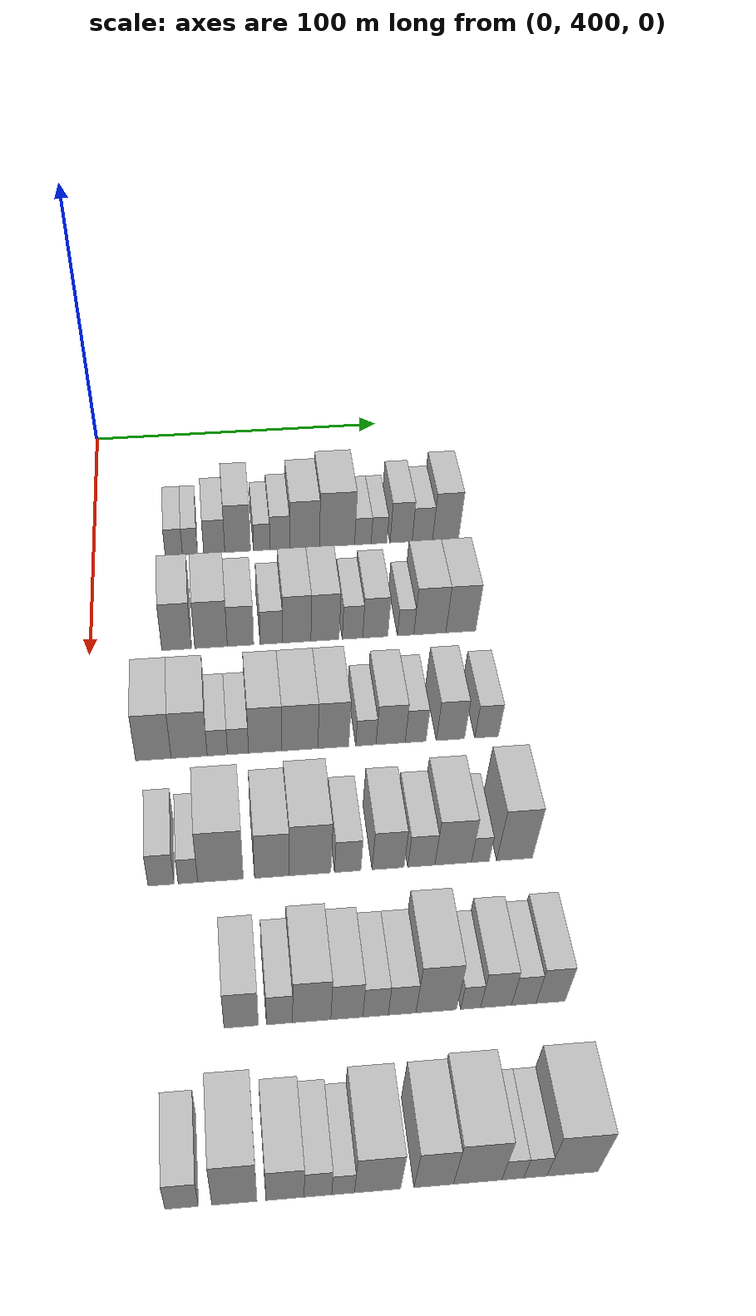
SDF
<sdf version="1.6">
 <world name="default">
  <model name="building_109">
   <static>1</static>
   <pose>50.0000 426.2319 0 0.000000 0.000000 0.000000</pose>
   <link name="link">
    <pose>0 0 6.00 0 0 0</pose>
    <collision name="collision"><geometry><box><size>20.0000 5.6300 12.0000</size></box></geometry></collision>
    <visual name="visual">
     <cast_shadows>0</cast_shadows>
     <geometry><box><size>20.0000 5.6300 12.0000</size></box></geometry>
     <material>
      <script>
       <uri>model://HANNAS_wall/materials/scripts</uri>
       <uri>model://HANNAS_wall/materials/textures</uri>
       <name>vrc/HANNAS_wall</name>
      </script>
     </material>
    </visual>
   </link>
  </model>
  <model name="building_110">
   <static>1</static>
   <pose>50.0000 431.5166 0 0.000000 0.000000 0.000000</pose>
   <link name="link">
    <pose>0 0 6.00 0 0 0</pose>
    <collision name="collision"><geometry><box><size>20.0000 4.9394 12.0000</size></box></geometry></collision>
    <visual name="visual">
     <cast_shadows>0</cast_shadows>
     <geometry><box><size>20.0000 4.9394 12.0000</size></box></geometry>
     <material>
      <script>
       <uri>model://HANNAS_wall/materials/scripts</uri>
       <uri>model://HANNAS_wall/materials/textures</uri>
       <name>vrc/HANNAS_wall</name>
      </script>
     </material>
    </visual>
   </link>
  </model>
  <model name="building_111">
   <static>1</static>
   <pose>50.0000 439.4368 0 0.000000 0.000000 0.000000</pose>
   <link name="link">
    <pose>0 0 7.50 0 0 0</pose>
    <collision name="collision"><geometry><box><size>20.0000 6.9009 15.0000</size></box></geometry></collision>
    <visual name="visual">
     <cast_shadows>0</cast_shadows>
     <geometry><box><size>20.0000 6.9009 15.0000</size></box></geometry>
     <material>
      <script>
       <uri>model://HANNAS_wall/materials/scripts</uri>
       <uri>model://HANNAS_wall/materials/textures</uri>
       <name>vrc/HANNAS_wall</name>
      </script>
     </material>
    </visual>
   </link>
  </model>
  <model name="building_112">
   <static>1</static>
   <pose>50.0000 447.0888 0 0.000000 0.000000 0.000000</pose>
   <link name="link">
    <pose>0 0 10.50 0 0 0</pose>
    <collision name="collision"><geometry><box><size>20.0000 8.4031 21.0000</size></box></geometry></collision>
    <visual name="visual">
     <cast_shadows>0</cast_shadows>
     <geometry><box><size>20.0000 8.4031 21.0000</size></box></geometry>
     <material>
      <script>
       <uri>model://HANNAS_wall/materials/scripts</uri>
       <uri>model://HANNAS_wall/materials/textures</uri>
       <name>vrc/HANNAS_wall</name>
      </script>
     </material>
    </visual>
   </link>
  </model>
  <model name="building_113">
   <static>1</static>
   <pose>50.0000 454.9744 0 0.000000 0.000000 0.000000</pose>
   <link name="link">
    <pose>0 0 6.00 0 0 0</pose>
    <collision name="collision"><geometry><box><size>20.0000 5.3681 12.0000</size></box></geometry></collision>
    <visual name="visual">
     <cast_shadows>0</cast_shadows>
     <geometry><box><size>20.0000 5.3681 12.0000</size></box></geometry>
     <material>
      <script>
       <uri>model://HANNAS_wall/materials/scripts</uri>
       <uri>model://HANNAS_wall/materials/textures</uri>
       <name>vrc/HANNAS_wall</name>
      </script>
     </material>
    </visual>
   </link>
  </model>
  <model name="building_114">
   <static>1</static>
   <pose>50.0000 460.9009 0 0.000000 0.000000 0.000000</pose>
   <link name="link">
    <pose>0 0 7.50 0 0 0</pose>
    <collision name="collision"><geometry><box><size>20.0000 6.4849 15.0000</size></box></geometry></collision>
    <visual name="visual">
     <cast_shadows>0</cast_shadows>
     <geometry><box><size>20.0000 6.4849 15.0000</size></box></geometry>
     <material>
      <script>
       <uri>model://HANNAS_wall/materials/scripts</uri>
       <uri>model://HANNAS_wall/materials/textures</uri>
       <name>vrc/HANNAS_wall</name>
      </script>
     </material>
    </visual>
   </link>
  </model>
  <model name="building_115">
   <static>1</static>
   <pose>50.0000 469.0437 0 0.000000 0.000000 0.000000</pose>
   <link name="link">
    <pose>0 0 10.50 0 0 0</pose>
    <collision name="collision"><geometry><box><size>20.0000 9.8007 21.0000</size></box></geometry></collision>
    <visual name="visual">
     <cast_shadows>0</cast_shadows>
     <geometry><box><size>20.0000 9.8007 21.0000</size></box></geometry>
     <material>
      <script>
       <uri>model://HANNAS_wall/materials/scripts</uri>
       <uri>model://HANNAS_wall/materials/textures</uri>
       <name>vrc/HANNAS_wall</name>
      </script>
     </material>
    </visual>
   </link>
  </model>
  <model name="building_116">
   <static>1</static>
   <pose>50.0000 479.7732 0 0.000000 0.000000 0.000000</pose>
   <link name="link">
    <pose>0 0 12.00 0 0 0</pose>
    <collision name="collision"><geometry><box><size>20.0000 11.6583 24.0000</size></box></geometry></collision>
    <visual name="visual">
     <cast_shadows>0</cast_shadows>
     <geometry><box><size>20.0000 11.6583 24.0000</size></box></geometry>
     <material>
      <script>
       <uri>model://HANNAS_wall/materials/scripts</uri>
       <uri>model://HANNAS_wall/materials/textures</uri>
       <name>vrc/HANNAS_wall</name>
      </script>
     </material>
    </visual>
   </link>
  </model>
  <model name="building_117">
   <static>1</static>
   <pose>50.0000 488.3434 0 0.000000 0.000000 0.000000</pose>
   <link name="link">
    <pose>0 0 6.00 0 0 0</pose>
    <collision name="collision"><geometry><box><size>20.0000 5.4820 12.0000</size></box></geometry></collision>
    <visual name="visual">
     <cast_shadows>0</cast_shadows>
     <geometry><box><size>20.0000 5.4820 12.0000</size></box></geometry>
     <material>
      <script>
       <uri>model://HANNAS_wall/materials/scripts</uri>
       <uri>model://HANNAS_wall/materials/textures</uri>
       <name>vrc/HANNAS_wall</name>
      </script>
     </material>
    </visual>
   </link>
  </model>
  <model name="building_118">
   <static>1</static>
   <pose>50.0000 493.7127 0 0.000000 0.000000 0.000000</pose>
   <link name="link">
    <pose>0 0 6.00 0 0 0</pose>
    <collision name="collision"><geometry><box><size>20.0000 5.2568 12.0000</size></box></geometry></collision>
    <visual name="visual">
     <cast_shadows>0</cast_shadows>
     <geometry><box><size>20.0000 5.2568 12.0000</size></box></geometry>
     <material>
      <script>
       <uri>model://HANNAS_wall/materials/scripts</uri>
       <uri>model://HANNAS_wall/materials/textures</uri>
       <name>vrc/HANNAS_wall</name>
      </script>
     </material>
    </visual>
   </link>
  </model>
  <model name="building_119">
   <static>1</static>
   <pose>50.0000 501.0088 0 0.000000 0.000000 0.000000</pose>
   <link name="link">
    <pose>0 0 9.00 0 0 0</pose>
    <collision name="collision"><geometry><box><size>20.0000 7.3353 18.0000</size></box></geometry></collision>
    <visual name="visual">
     <cast_shadows>0</cast_shadows>
     <geometry><box><size>20.0000 7.3353 18.0000</size></box></geometry>
     <material>
      <script>
       <uri>model://HANNAS_wall/materials/scripts</uri>
       <uri>model://HANNAS_wall/materials/textures</uri>
       <name>vrc/HANNAS_wall</name>
      </script>
     </material>
    </visual>
   </link>
  </model>
  <model name="building_120">
   <static>1</static>
   <pose>50.0000 508.0726 0 0.000000 0.000000 0.000000</pose>
   <link name="link">
    <pose>0 0 7.50 0 0 0</pose>
    <collision name="collision"><geometry><box><size>20.0000 6.7923 15.0000</size></box></geometry></collision>
    <visual name="visual">
     <cast_shadows>0</cast_shadows>
     <geometry><box><size>20.0000 6.7923 15.0000</size></box></geometry>
     <material>
      <script>
       <uri>model://HANNAS_wall/materials/scripts</uri>
       <uri>model://HANNAS_wall/materials/textures</uri>
       <name>vrc/HANNAS_wall</name>
      </script>
     </material>
    </visual>
   </link>
  </model>
  <model name="building_121">
   <static>1</static>
   <pose>50.0000 515.8323 0 0.000000 0.000000 0.000000</pose>
   <link name="link">
    <pose>0 0 10.50 0 0 0</pose>
    <collision name="collision"><geometry><box><size>20.0000 8.7270 21.0000</size></box></geometry></collision>
    <visual name="visual">
     <cast_shadows>0</cast_shadows>
     <geometry><box><size>20.0000 8.7270 21.0000</size></box></geometry>
     <material>
      <script>
       <uri>model://HANNAS_wall/materials/scripts</uri>
       <uri>model://HANNAS_wall/materials/textures</uri>
       <name>vrc/HANNAS_wall</name>
      </script>
     </material>
    </visual>
   </link>
  </model>
  <model name="building_245">
   <static>1</static>
   <pose>90.0000 426.3138 0 0.000000 0.000000 0.000000</pose>
   <link name="link">
    <pose>0 0 10.50 0 0 0</pose>
    <collision name="collision"><geometry><box><size>20.0000 9.0513 21.0000</size></box></geometry></collision>
    <visual name="visual">
     <cast_shadows>0</cast_shadows>
     <geometry><box><size>20.0000 9.0513 21.0000</size></box></geometry>
     <material>
      <script>
       <uri>model://HANNAS_wall/materials/scripts</uri>
       <uri>model://HANNAS_wall/materials/textures</uri>
       <name>vrc/HANNAS_wall</name>
      </script>
     </material>
    </visual>
   </link>
  </model>
  <model name="building_246">
   <static>1</static>
   <pose>90.0000 436.8096 0 0.000000 0.000000 0.000000</pose>
   <link name="link">
    <pose>0 0 10.50 0 0 0</pose>
    <collision name="collision"><geometry><box><size>20.0000 9.9404 21.0000</size></box></geometry></collision>
    <visual name="visual">
     <cast_shadows>0</cast_shadows>
     <geometry><box><size>20.0000 9.9404 21.0000</size></box></geometry>
     <material>
      <script>
       <uri>model://HANNAS_wall/materials/scripts</uri>
       <uri>model://HANNAS_wall/materials/textures</uri>
       <name>vrc/HANNAS_wall</name>
      </script>
     </material>
    </visual>
   </link>
  </model>
  <model name="building_247">
   <static>1</static>
   <pose>90.0000 445.8253 0 0.000000 0.000000 0.000000</pose>
   <link name="link">
    <pose>0 0 9.00 0 0 0</pose>
    <collision name="collision"><geometry><box><size>20.0000 8.0908 18.0000</size></box></geometry></collision>
    <visual name="visual">
     <cast_shadows>0</cast_shadows>
     <geometry><box><size>20.0000 8.0908 18.0000</size></box></geometry>
     <material>
      <script>
       <uri>model://HANNAS_wall/materials/scripts</uri>
       <uri>model://HANNAS_wall/materials/textures</uri>
       <name>vrc/HANNAS_wall</name>
      </script>
     </material>
    </visual>
   </link>
  </model>
  <model name="building_248">
   <static>1</static>
   <pose>90.0000 455.2930 0 0.000000 0.000000 0.000000</pose>
   <link name="link">
    <pose>0 0 7.50 0 0 0</pose>
    <collision name="collision"><geometry><box><size>20.0000 6.8446 15.0000</size></box></geometry></collision>
    <visual name="visual">
     <cast_shadows>0</cast_shadows>
     <geometry><box><size>20.0000 6.8446 15.0000</size></box></geometry>
     <material>
      <script>
       <uri>model://HANNAS_wall/materials/scripts</uri>
       <uri>model://HANNAS_wall/materials/textures</uri>
       <name>vrc/HANNAS_wall</name>
      </script>
     </material>
    </visual>
   </link>
  </model>
  <model name="building_249">
   <static>1</static>
   <pose>90.0000 463.0840 0 0.000000 0.000000 0.000000</pose>
   <link name="link">
    <pose>0 0 10.50 0 0 0</pose>
    <collision name="collision"><geometry><box><size>20.0000 8.7374 21.0000</size></box></geometry></collision>
    <visual name="visual">
     <cast_shadows>0</cast_shadows>
     <geometry><box><size>20.0000 8.7374 21.0000</size></box></geometry>
     <material>
      <script>
       <uri>model://HANNAS_wall/materials/scripts</uri>
       <uri>model://HANNAS_wall/materials/textures</uri>
       <name>vrc/HANNAS_wall</name>
      </script>
     </material>
    </visual>
   </link>
  </model>
  <model name="building_250">
   <static>1</static>
   <pose>90.0000 471.8008 0 0.000000 0.000000 0.000000</pose>
   <link name="link">
    <pose>0 0 10.50 0 0 0</pose>
    <collision name="collision"><geometry><box><size>20.0000 8.6964 21.0000</size></box></geometry></collision>
    <visual name="visual">
     <cast_shadows>0</cast_shadows>
     <geometry><box><size>20.0000 8.6964 21.0000</size></box></geometry>
     <material>
      <script>
       <uri>model://HANNAS_wall/materials/scripts</uri>
       <uri>model://HANNAS_wall/materials/textures</uri>
       <name>vrc/HANNAS_wall</name>
      </script>
     </material>
    </visual>
   </link>
  </model>
  <model name="building_251">
   <static>1</static>
   <pose>90.0000 480.3038 0 0.000000 0.000000 0.000000</pose>
   <link name="link">
    <pose>0 0 7.50 0 0 0</pose>
    <collision name="collision"><geometry><box><size>20.0000 6.3096 15.0000</size></box></geometry></collision>
    <visual name="visual">
     <cast_shadows>0</cast_shadows>
     <geometry><box><size>20.0000 6.3096 15.0000</size></box></geometry>
     <material>
      <script>
       <uri>model://HANNAS_wall/materials/scripts</uri>
       <uri>model://HANNAS_wall/materials/textures</uri>
       <name>vrc/HANNAS_wall</name>
      </script>
     </material>
    </visual>
   </link>
  </model>
  <model name="building_252">
   <static>1</static>
   <pose>90.0000 487.3551 0 0.000000 0.000000 0.000000</pose>
   <link name="link">
    <pose>0 0 9.00 0 0 0</pose>
    <collision name="collision"><geometry><box><size>20.0000 7.7930 18.0000</size></box></geometry></collision>
    <visual name="visual">
     <cast_shadows>0</cast_shadows>
     <geometry><box><size>20.0000 7.7930 18.0000</size></box></geometry>
     <material>
      <script>
       <uri>model://HANNAS_wall/materials/scripts</uri>
       <uri>model://HANNAS_wall/materials/textures</uri>
       <name>vrc/HANNAS_wall</name>
      </script>
     </material>
    </visual>
   </link>
  </model>
  <model name="building_253">
   <static>1</static>
   <pose>90.0000 496.7906 0 0.000000 0.000000 0.000000</pose>
   <link name="link">
    <pose>0 0 6.00 0 0 0</pose>
    <collision name="collision"><geometry><box><size>20.0000 5.0781 12.0000</size></box></geometry></collision>
    <visual name="visual">
     <cast_shadows>0</cast_shadows>
     <geometry><box><size>20.0000 5.0781 12.0000</size></box></geometry>
     <material>
      <script>
       <uri>model://HANNAS_wall/materials/scripts</uri>
       <uri>model://HANNAS_wall/materials/textures</uri>
       <name>vrc/HANNAS_wall</name>
      </script>
     </material>
    </visual>
   </link>
  </model>
  <model name="building_254">
   <static>1</static>
   <pose>90.0000 504.3240 0 0.000000 0.000000 0.000000</pose>
   <link name="link">
    <pose>0 0 10.50 0 0 0</pose>
    <collision name="collision"><geometry><box><size>20.0000 9.9887 21.0000</size></box></geometry></collision>
    <visual name="visual">
     <cast_shadows>0</cast_shadows>
     <geometry><box><size>20.0000 9.9887 21.0000</size></box></geometry>
     <material>
      <script>
       <uri>model://HANNAS_wall/materials/scripts</uri>
       <uri>model://HANNAS_wall/materials/textures</uri>
       <name>vrc/HANNAS_wall</name>
      </script>
     </material>
    </visual>
   </link>
  </model>
  <model name="building_255">
   <static>1</static>
   <pose>90.0000 513.9896 0 0.000000 0.000000 0.000000</pose>
   <link name="link">
    <pose>0 0 10.50 0 0 0</pose>
    <collision name="collision"><geometry><box><size>20.0000 9.3424 21.0000</size></box></geometry></collision>
    <visual name="visual">
     <cast_shadows>0</cast_shadows>
     <geometry><box><size>20.0000 9.3424 21.0000</size></box></geometry>
     <material>
      <script>
       <uri>model://HANNAS_wall/materials/scripts</uri>
       <uri>model://HANNAS_wall/materials/textures</uri>
       <name>vrc/HANNAS_wall</name>
      </script>
     </material>
    </visual>
   </link>
  </model>
  <model name="building_382">
   <static>1</static>
   <pose>130.0000 418.8878 0 0.000000 0.000000 0.000000</pose>
   <link name="link">
    <pose>0 0 10.50 0 0 0</pose>
    <collision name="collision"><geometry><box><size>20.0000 10.0614 21.0000</size></box></geometry></collision>
    <visual name="visual">
     <cast_shadows>0</cast_shadows>
     <geometry><box><size>20.0000 10.0614 21.0000</size></box></geometry>
     <material>
      <script>
       <uri>model://HANNAS_wall/materials/scripts</uri>
       <uri>model://HANNAS_wall/materials/textures</uri>
       <name>vrc/HANNAS_wall</name>
      </script>
     </material>
    </visual>
   </link>
  </model>
  <model name="building_383">
   <static>1</static>
   <pose>130.0000 429.0258 0 0.000000 0.000000 0.000000</pose>
   <link name="link">
    <pose>0 0 10.50 0 0 0</pose>
    <collision name="collision"><geometry><box><size>20.0000 10.2147 21.0000</size></box></geometry></collision>
    <visual name="visual">
     <cast_shadows>0</cast_shadows>
     <geometry><box><size>20.0000 10.2147 21.0000</size></box></geometry>
     <material>
      <script>
       <uri>model://HANNAS_wall/materials/scripts</uri>
       <uri>model://HANNAS_wall/materials/textures</uri>
       <name>vrc/HANNAS_wall</name>
      </script>
     </material>
    </visual>
   </link>
  </model>
  <model name="building_384">
   <static>1</static>
   <pose>130.0000 437.0307 0 0.000000 0.000000 0.000000</pose>
   <link name="link">
    <pose>0 0 6.00 0 0 0</pose>
    <collision name="collision"><geometry><box><size>20.0000 5.7950 12.0000</size></box></geometry></collision>
    <visual name="visual">
     <cast_shadows>0</cast_shadows>
     <geometry><box><size>20.0000 5.7950 12.0000</size></box></geometry>
     <material>
      <script>
       <uri>model://HANNAS_wall/materials/scripts</uri>
       <uri>model://HANNAS_wall/materials/textures</uri>
       <name>vrc/HANNAS_wall</name>
      </script>
     </material>
    </visual>
   </link>
  </model>
  <model name="building_385">
   <static>1</static>
   <pose>130.0000 442.9160 0 0.000000 0.000000 0.000000</pose>
   <link name="link">
    <pose>0 0 6.00 0 0 0</pose>
    <collision name="collision"><geometry><box><size>20.0000 5.9756 12.0000</size></box></geometry></collision>
    <visual name="visual">
     <cast_shadows>0</cast_shadows>
     <geometry><box><size>20.0000 5.9756 12.0000</size></box></geometry>
     <material>
      <script>
       <uri>model://HANNAS_wall/materials/scripts</uri>
       <uri>model://HANNAS_wall/materials/textures</uri>
       <name>vrc/HANNAS_wall</name>
      </script>
     </material>
    </visual>
   </link>
  </model>
  <model name="building_386">
   <static>1</static>
   <pose>130.0000 450.6534 0 0.000000 0.000000 0.000000</pose>
   <link name="link">
    <pose>0 0 10.50 0 0 0</pose>
    <collision name="collision"><geometry><box><size>20.0000 9.4994 21.0000</size></box></geometry></collision>
    <visual name="visual">
     <cast_shadows>0</cast_shadows>
     <geometry><box><size>20.0000 9.4994 21.0000</size></box></geometry>
     <material>
      <script>
       <uri>model://HANNAS_wall/materials/scripts</uri>
       <uri>model://HANNAS_wall/materials/textures</uri>
       <name>vrc/HANNAS_wall</name>
      </script>
     </material>
    </visual>
   </link>
  </model>
  <model name="building_387">
   <static>1</static>
   <pose>130.0000 460.5909 0 0.000000 0.000000 0.000000</pose>
   <link name="link">
    <pose>0 0 10.50 0 0 0</pose>
    <collision name="collision"><geometry><box><size>20.0000 10.3756 21.0000</size></box></geometry></collision>
    <visual name="visual">
     <cast_shadows>0</cast_shadows>
     <geometry><box><size>20.0000 10.3756 21.0000</size></box></geometry>
     <material>
      <script>
       <uri>model://HANNAS_wall/materials/scripts</uri>
       <uri>model://HANNAS_wall/materials/textures</uri>
       <name>vrc/HANNAS_wall</name>
      </script>
     </material>
    </visual>
   </link>
  </model>
  <model name="building_388">
   <static>1</static>
   <pose>130.0000 470.2148 0 0.000000 0.000000 0.000000</pose>
   <link name="link">
    <pose>0 0 10.50 0 0 0</pose>
    <collision name="collision"><geometry><box><size>20.0000 8.8722 21.0000</size></box></geometry></collision>
    <visual name="visual">
     <cast_shadows>0</cast_shadows>
     <geometry><box><size>20.0000 8.8722 21.0000</size></box></geometry>
     <material>
      <script>
       <uri>model://HANNAS_wall/materials/scripts</uri>
       <uri>model://HANNAS_wall/materials/textures</uri>
       <name>vrc/HANNAS_wall</name>
      </script>
     </material>
    </visual>
   </link>
  </model>
  <model name="building_389">
   <static>1</static>
   <pose>130.0000 479.5742 0 0.000000 0.000000 0.000000</pose>
   <link name="link">
    <pose>0 0 6.00 0 0 0</pose>
    <collision name="collision"><geometry><box><size>20.0000 5.8466 12.0000</size></box></geometry></collision>
    <visual name="visual">
     <cast_shadows>0</cast_shadows>
     <geometry><box><size>20.0000 5.8466 12.0000</size></box></geometry>
     <material>
      <script>
       <uri>model://HANNAS_wall/materials/scripts</uri>
       <uri>model://HANNAS_wall/materials/textures</uri>
       <name>vrc/HANNAS_wall</name>
      </script>
     </material>
    </visual>
   </link>
  </model>
  <model name="building_390">
   <static>1</static>
   <pose>130.0000 486.7012 0 0.000000 0.000000 0.000000</pose>
   <link name="link">
    <pose>0 0 9.00 0 0 0</pose>
    <collision name="collision"><geometry><box><size>20.0000 8.4074 18.0000</size></box></geometry></collision>
    <visual name="visual">
     <cast_shadows>0</cast_shadows>
     <geometry><box><size>20.0000 8.4074 18.0000</size></box></geometry>
     <material>
      <script>
       <uri>model://HANNAS_wall/materials/scripts</uri>
       <uri>model://HANNAS_wall/materials/textures</uri>
       <name>vrc/HANNAS_wall</name>
      </script>
     </material>
    </visual>
   </link>
  </model>
  <model name="building_391">
   <static>1</static>
   <pose>130.0000 493.9213 0 0.000000 0.000000 0.000000</pose>
   <link name="link">
    <pose>0 0 7.50 0 0 0</pose>
    <collision name="collision"><geometry><box><size>20.0000 6.0328 15.0000</size></box></geometry></collision>
    <visual name="visual">
     <cast_shadows>0</cast_shadows>
     <geometry><box><size>20.0000 6.0328 15.0000</size></box></geometry>
     <material>
      <script>
       <uri>model://HANNAS_wall/materials/scripts</uri>
       <uri>model://HANNAS_wall/materials/textures</uri>
       <name>vrc/HANNAS_wall</name>
      </script>
     </material>
    </visual>
   </link>
  </model>
  <model name="building_392">
   <static>1</static>
   <pose>130.0000 504.0261 0 0.000000 0.000000 0.000000</pose>
   <link name="link">
    <pose>0 0 9.00 0 0 0</pose>
    <collision name="collision"><geometry><box><size>20.0000 8.1768 18.0000</size></box></geometry></collision>
    <visual name="visual">
     <cast_shadows>0</cast_shadows>
     <geometry><box><size>20.0000 8.1768 18.0000</size></box></geometry>
     <material>
      <script>
       <uri>model://HANNAS_wall/materials/scripts</uri>
       <uri>model://HANNAS_wall/materials/textures</uri>
       <name>vrc/HANNAS_wall</name>
      </script>
     </material>
    </visual>
   </link>
  </model>
  <model name="building_393">
   <static>1</static>
   <pose>130.0000 514.5579 0 0.000000 0.000000 0.000000</pose>
   <link name="link">
    <pose>0 0 7.50 0 0 0</pose>
    <collision name="collision"><geometry><box><size>20.0000 6.8868 15.0000</size></box></geometry></collision>
    <visual name="visual">
     <cast_shadows>0</cast_shadows>
     <geometry><box><size>20.0000 6.8868 15.0000</size></box></geometry>
     <material>
      <script>
       <uri>model://HANNAS_wall/materials/scripts</uri>
       <uri>model://HANNAS_wall/materials/textures</uri>
       <name>vrc/HANNAS_wall</name>
      </script>
     </material>
    </visual>
   </link>
  </model>
  <model name="building_518">
   <static>1</static>
   <pose>170.0000 420.5794 0 0.000000 0.000000 0.000000</pose>
   <link name="link">
    <pose>0 0 7.50 0 0 0</pose>
    <collision name="collision"><geometry><box><size>20.0000 6.8968 15.0000</size></box></geometry></collision>
    <visual name="visual">
     <cast_shadows>0</cast_shadows>
     <geometry><box><size>20.0000 6.8968 15.0000</size></box></geometry>
     <material>
      <script>
       <uri>model://HANNAS_wall/materials/scripts</uri>
       <uri>model://HANNAS_wall/materials/textures</uri>
       <name>vrc/HANNAS_wall</name>
      </script>
     </material>
    </visual>
   </link>
  </model>
  <model name="building_519">
   <static>1</static>
   <pose>170.0000 427.5992 0 0.000000 0.000000 0.000000</pose>
   <link name="link">
    <pose>0 0 6.00 0 0 0</pose>
    <collision name="collision"><geometry><box><size>20.0000 5.1430 12.0000</size></box></geometry></collision>
    <visual name="visual">
     <cast_shadows>0</cast_shadows>
     <geometry><box><size>20.0000 5.1430 12.0000</size></box></geometry>
     <material>
      <script>
       <uri>model://HANNAS_wall/materials/scripts</uri>
       <uri>model://HANNAS_wall/materials/textures</uri>
       <name>vrc/HANNAS_wall</name>
      </script>
     </material>
    </visual>
   </link>
  </model>
  <model name="building_520">
   <static>1</static>
   <pose>170.0000 436.1576 0 0.000000 0.000000 0.000000</pose>
   <link name="link">
    <pose>0 0 12.00 0 0 0</pose>
    <collision name="collision"><geometry><box><size>20.0000 11.9738 24.0000</size></box></geometry></collision>
    <visual name="visual">
     <cast_shadows>0</cast_shadows>
     <geometry><box><size>20.0000 11.9738 24.0000</size></box></geometry>
     <material>
      <script>
       <uri>model://HANNAS_wall/materials/scripts</uri>
       <uri>model://HANNAS_wall/materials/textures</uri>
       <name>vrc/HANNAS_wall</name>
      </script>
     </material>
    </visual>
   </link>
  </model>
  <model name="building_521">
   <static>1</static>
   <pose>170.0000 449.7283 0 0.000000 0.000000 0.000000</pose>
   <link name="link">
    <pose>0 0 10.50 0 0 0</pose>
    <collision name="collision"><geometry><box><size>20.0000 9.1676 21.0000</size></box></geometry></collision>
    <visual name="visual">
     <cast_shadows>0</cast_shadows>
     <geometry><box><size>20.0000 9.1676 21.0000</size></box></geometry>
     <material>
      <script>
       <uri>model://HANNAS_wall/materials/scripts</uri>
       <uri>model://HANNAS_wall/materials/textures</uri>
       <name>vrc/HANNAS_wall</name>
      </script>
     </material>
    </visual>
   </link>
  </model>
  <model name="building_522">
   <static>1</static>
   <pose>170.0000 459.8295 0 0.000000 0.000000 0.000000</pose>
   <link name="link">
    <pose>0 0 12.00 0 0 0</pose>
    <collision name="collision"><geometry><box><size>20.0000 11.0348 24.0000</size></box></geometry></collision>
    <visual name="visual">
     <cast_shadows>0</cast_shadows>
     <geometry><box><size>20.0000 11.0348 24.0000</size></box></geometry>
     <material>
      <script>
       <uri>model://HANNAS_wall/materials/scripts</uri>
       <uri>model://HANNAS_wall/materials/textures</uri>
       <name>vrc/HANNAS_wall</name>
      </script>
     </material>
    </visual>
   </link>
  </model>
  <model name="building_523">
   <static>1</static>
   <pose>170.0000 469.8451 0 0.000000 0.000000 0.000000</pose>
   <link name="link">
    <pose>0 0 7.50 0 0 0</pose>
    <collision name="collision"><geometry><box><size>20.0000 6.9963 15.0000</size></box></geometry></collision>
    <visual name="visual">
     <cast_shadows>0</cast_shadows>
     <geometry><box><size>20.0000 6.9963 15.0000</size></box></geometry>
     <material>
      <script>
       <uri>model://HANNAS_wall/materials/scripts</uri>
       <uri>model://HANNAS_wall/materials/textures</uri>
       <name>vrc/HANNAS_wall</name>
      </script>
     </material>
    </visual>
   </link>
  </model>
  <model name="building_524">
   <static>1</static>
   <pose>170.0000 480.6177 0 0.000000 0.000000 0.000000</pose>
   <link name="link">
    <pose>0 0 9.00 0 0 0</pose>
    <collision name="collision"><geometry><box><size>20.0000 8.5489 18.0000</size></box></geometry></collision>
    <visual name="visual">
     <cast_shadows>0</cast_shadows>
     <geometry><box><size>20.0000 8.5489 18.0000</size></box></geometry>
     <material>
      <script>
       <uri>model://HANNAS_wall/materials/scripts</uri>
       <uri>model://HANNAS_wall/materials/textures</uri>
       <name>vrc/HANNAS_wall</name>
      </script>
     </material>
    </visual>
   </link>
  </model>
  <model name="building_525">
   <static>1</static>
   <pose>170.0000 489.5173 0 0.000000 0.000000 0.000000</pose>
   <link name="link">
    <pose>0 0 7.50 0 0 0</pose>
    <collision name="collision"><geometry><box><size>20.0000 7.2503 15.0000</size></box></geometry></collision>
    <visual name="visual">
     <cast_shadows>0</cast_shadows>
     <geometry><box><size>20.0000 7.2503 15.0000</size></box></geometry>
     <material>
      <script>
       <uri>model://HANNAS_wall/materials/scripts</uri>
       <uri>model://HANNAS_wall/materials/textures</uri>
       <name>vrc/HANNAS_wall</name>
      </script>
     </material>
    </visual>
   </link>
  </model>
  <model name="building_526">
   <static>1</static>
   <pose>170.0000 498.0499 0 0.000000 0.000000 0.000000</pose>
   <link name="link">
    <pose>0 0 10.50 0 0 0</pose>
    <collision name="collision"><geometry><box><size>20.0000 9.8149 21.0000</size></box></geometry></collision>
    <visual name="visual">
     <cast_shadows>0</cast_shadows>
     <geometry><box><size>20.0000 9.8149 21.0000</size></box></geometry>
     <material>
      <script>
       <uri>model://HANNAS_wall/materials/scripts</uri>
       <uri>model://HANNAS_wall/materials/textures</uri>
       <name>vrc/HANNAS_wall</name>
      </script>
     </material>
    </visual>
   </link>
  </model>
  <model name="building_527">
   <static>1</static>
   <pose>170.0000 505.3664 0 0.000000 0.000000 0.000000</pose>
   <link name="link">
    <pose>0 0 6.00 0 0 0</pose>
    <collision name="collision"><geometry><box><size>20.0000 4.8182 12.0000</size></box></geometry></collision>
    <visual name="visual">
     <cast_shadows>0</cast_shadows>
     <geometry><box><size>20.0000 4.8182 12.0000</size></box></geometry>
     <material>
      <script>
       <uri>model://HANNAS_wall/materials/scripts</uri>
       <uri>model://HANNAS_wall/materials/textures</uri>
       <name>vrc/HANNAS_wall</name>
      </script>
     </material>
    </visual>
   </link>
  </model>
  <model name="building_528">
   <static>1</static>
   <pose>170.0000 514.6088 0 0.000000 0.000000 0.000000</pose>
   <link name="link">
    <pose>0 0 12.00 0 0 0</pose>
    <collision name="collision"><geometry><box><size>20.0000 9.6664 24.0000</size></box></geometry></collision>
    <visual name="visual">
     <cast_shadows>0</cast_shadows>
     <geometry><box><size>20.0000 9.6664 24.0000</size></box></geometry>
     <material>
      <script>
       <uri>model://HANNAS_wall/materials/scripts</uri>
       <uri>model://HANNAS_wall/materials/textures</uri>
       <name>vrc/HANNAS_wall</name>
      </script>
     </material>
    </visual>
   </link>
  </model>
  <model name="building_655">
   <static>1</static>
   <pose>210.0000 439.3909 0 0.000000 0.000000 0.000000</pose>
   <link name="link">
    <pose>0 0 9.00 0 0 0</pose>
    <collision name="collision"><geometry><box><size>20.0000 8.3003 18.0000</size></box></geometry></collision>
    <visual name="visual">
     <cast_shadows>0</cast_shadows>
     <geometry><box><size>20.0000 8.3003 18.0000</size></box></geometry>
     <material>
      <script>
       <uri>model://HANNAS_wall/materials/scripts</uri>
       <uri>model://HANNAS_wall/materials/textures</uri>
       <name>vrc/HANNAS_wall</name>
      </script>
     </material>
    </visual>
   </link>
  </model>
  <model name="building_656">
   <static>1</static>
   <pose>210.0000 448.7238 0 0.000000 0.000000 0.000000</pose>
   <link name="link">
    <pose>0 0 7.50 0 0 0</pose>
    <collision name="collision"><geometry><box><size>20.0000 6.3654 15.0000</size></box></geometry></collision>
    <visual name="visual">
     <cast_shadows>0</cast_shadows>
     <geometry><box><size>20.0000 6.3654 15.0000</size></box></geometry>
     <material>
      <script>
       <uri>model://HANNAS_wall/materials/scripts</uri>
       <uri>model://HANNAS_wall/materials/textures</uri>
       <name>vrc/HANNAS_wall</name>
      </script>
     </material>
    </visual>
   </link>
  </model>
  <model name="building_657">
   <static>1</static>
   <pose>210.0000 456.5639 0 0.000000 0.000000 0.000000</pose>
   <link name="link">
    <pose>0 0 10.50 0 0 0</pose>
    <collision name="collision"><geometry><box><size>20.0000 9.3149 21.0000</size></box></geometry></collision>
    <visual name="visual">
     <cast_shadows>0</cast_shadows>
     <geometry><box><size>20.0000 9.3149 21.0000</size></box></geometry>
     <material>
      <script>
       <uri>model://HANNAS_wall/materials/scripts</uri>
       <uri>model://HANNAS_wall/materials/textures</uri>
       <name>vrc/HANNAS_wall</name>
      </script>
     </material>
    </visual>
   </link>
  </model>
  <model name="building_658">
   <static>1</static>
   <pose>210.0000 465.1339 0 0.000000 0.000000 0.000000</pose>
   <link name="link">
    <pose>0 0 9.00 0 0 0</pose>
    <collision name="collision"><geometry><box><size>20.0000 7.8250 18.0000</size></box></geometry></collision>
    <visual name="visual">
     <cast_shadows>0</cast_shadows>
     <geometry><box><size>20.0000 7.8250 18.0000</size></box></geometry>
     <material>
      <script>
       <uri>model://HANNAS_wall/materials/scripts</uri>
       <uri>model://HANNAS_wall/materials/textures</uri>
       <name>vrc/HANNAS_wall</name>
      </script>
     </material>
    </visual>
   </link>
  </model>
  <model name="building_659">
   <static>1</static>
   <pose>210.0000 472.1698 0 0.000000 0.000000 0.000000</pose>
   <link name="link">
    <pose>0 0 7.50 0 0 0</pose>
    <collision name="collision"><geometry><box><size>20.0000 6.2469 15.0000</size></box></geometry></collision>
    <visual name="visual">
     <cast_shadows>0</cast_shadows>
     <geometry><box><size>20.0000 6.2469 15.0000</size></box></geometry>
     <material>
      <script>
       <uri>model://HANNAS_wall/materials/scripts</uri>
       <uri>model://HANNAS_wall/materials/textures</uri>
       <name>vrc/HANNAS_wall</name>
      </script>
     </material>
    </visual>
   </link>
  </model>
  <model name="building_660">
   <static>1</static>
   <pose>210.0000 478.6996 0 0.000000 0.000000 0.000000</pose>
   <link name="link">
    <pose>0 0 7.50 0 0 0</pose>
    <collision name="collision"><geometry><box><size>20.0000 6.8128 15.0000</size></box></geometry></collision>
    <visual name="visual">
     <cast_shadows>0</cast_shadows>
     <geometry><box><size>20.0000 6.8128 15.0000</size></box></geometry>
     <material>
      <script>
       <uri>model://HANNAS_wall/materials/scripts</uri>
       <uri>model://HANNAS_wall/materials/textures</uri>
       <name>vrc/HANNAS_wall</name>
      </script>
     </material>
    </visual>
   </link>
  </model>
  <model name="building_661">
   <static>1</static>
   <pose>210.0000 487.1196 0 0.000000 0.000000 0.000000</pose>
   <link name="link">
    <pose>0 0 12.00 0 0 0</pose>
    <collision name="collision"><geometry><box><size>20.0000 10.0271 24.0000</size></box></geometry></collision>
    <visual name="visual">
     <cast_shadows>0</cast_shadows>
     <geometry><box><size>20.0000 10.0271 24.0000</size></box></geometry>
     <material>
      <script>
       <uri>model://HANNAS_wall/materials/scripts</uri>
       <uri>model://HANNAS_wall/materials/textures</uri>
       <name>vrc/HANNAS_wall</name>
      </script>
     </material>
    </visual>
   </link>
  </model>
  <model name="building_662">
   <static>1</static>
   <pose>210.0000 495.6139 0 0.000000 0.000000 0.000000</pose>
   <link name="link">
    <pose>0 0 6.00 0 0 0</pose>
    <collision name="collision"><geometry><box><size>20.0000 4.9614 12.0000</size></box></geometry></collision>
    <visual name="visual">
     <cast_shadows>0</cast_shadows>
     <geometry><box><size>20.0000 4.9614 12.0000</size></box></geometry>
     <material>
      <script>
       <uri>model://HANNAS_wall/materials/scripts</uri>
       <uri>model://HANNAS_wall/materials/textures</uri>
       <name>vrc/HANNAS_wall</name>
      </script>
     </material>
    </visual>
   </link>
  </model>
  <model name="building_663">
   <static>1</static>
   <pose>210.0000 501.9280 0 0.000000 0.000000 0.000000</pose>
   <link name="link">
    <pose>0 0 9.00 0 0 0</pose>
    <collision name="collision"><geometry><box><size>20.0000 7.6668 18.0000</size></box></geometry></collision>
    <visual name="visual">
     <cast_shadows>0</cast_shadows>
     <geometry><box><size>20.0000 7.6668 18.0000</size></box></geometry>
     <material>
      <script>
       <uri>model://HANNAS_wall/materials/scripts</uri>
       <uri>model://HANNAS_wall/materials/textures</uri>
       <name>vrc/HANNAS_wall</name>
      </script>
     </material>
    </visual>
   </link>
  </model>
  <model name="building_664">
   <static>1</static>
   <pose>210.0000 508.8183 0 0.000000 0.000000 0.000000</pose>
   <link name="link">
    <pose>0 0 7.50 0 0 0</pose>
    <collision name="collision"><geometry><box><size>20.0000 6.1137 15.0000</size></box></geometry></collision>
    <visual name="visual">
     <cast_shadows>0</cast_shadows>
     <geometry><box><size>20.0000 6.1137 15.0000</size></box></geometry>
     <material>
      <script>
       <uri>model://HANNAS_wall/materials/scripts</uri>
       <uri>model://HANNAS_wall/materials/textures</uri>
       <name>vrc/HANNAS_wall</name>
      </script>
     </material>
    </visual>
   </link>
  </model>
  <model name="building_665">
   <static>1</static>
   <pose>210.0000 515.4990 0 0.000000 0.000000 0.000000</pose>
   <link name="link">
    <pose>0 0 9.00 0 0 0</pose>
    <collision name="collision"><geometry><box><size>20.0000 7.2478 18.0000</size></box></geometry></collision>
    <visual name="visual">
     <cast_shadows>0</cast_shadows>
     <geometry><box><size>20.0000 7.2478 18.0000</size></box></geometry>
     <material>
      <script>
       <uri>model://HANNAS_wall/materials/scripts</uri>
       <uri>model://HANNAS_wall/materials/textures</uri>
       <name>vrc/HANNAS_wall</name>
      </script>
     </material>
    </visual>
   </link>
  </model>
  <model name="building_796">
   <static>1</static>
   <pose>250.0000 424.0409 0 0.000000 0.000000 0.000000</pose>
   <link name="link">
    <pose>0 0 7.50 0 0 0</pose>
    <collision name="collision"><geometry><box><size>20.0000 7.3421 15.0000</size></box></geometry></collision>
    <visual name="visual">
     <cast_shadows>0</cast_shadows>
     <geometry><box><size>20.0000 7.3421 15.0000</size></box></geometry>
     <material>
      <script>
       <uri>model://HANNAS_wall/materials/scripts</uri>
       <uri>model://HANNAS_wall/materials/textures</uri>
       <name>vrc/HANNAS_wall</name>
      </script>
     </material>
    </visual>
   </link>
  </model>
  <model name="building_797">
   <static>1</static>
   <pose>250.0000 435.6878 0 0.000000 0.000000 0.000000</pose>
   <link name="link">
    <pose>0 0 12.00 0 0 0</pose>
    <collision name="collision"><geometry><box><size>20.0000 9.9517 24.0000</size></box></geometry></collision>
    <visual name="visual">
     <cast_shadows>0</cast_shadows>
     <geometry><box><size>20.0000 9.9517 24.0000</size></box></geometry>
     <material>
      <script>
       <uri>model://HANNAS_wall/materials/scripts</uri>
       <uri>model://HANNAS_wall/materials/textures</uri>
       <name>vrc/HANNAS_wall</name>
      </script>
     </material>
    </visual>
   </link>
  </model>
  <model name="building_798">
   <static>1</static>
   <pose>250.0000 446.8986 0 0.000000 0.000000 0.000000</pose>
   <link name="link">
    <pose>0 0 9.00 0 0 0</pose>
    <collision name="collision"><geometry><box><size>20.0000 8.4700 18.0000</size></box></geometry></collision>
    <visual name="visual">
     <cast_shadows>0</cast_shadows>
     <geometry><box><size>20.0000 8.4700 18.0000</size></box></geometry>
     <material>
      <script>
       <uri>model://HANNAS_wall/materials/scripts</uri>
       <uri>model://HANNAS_wall/materials/textures</uri>
       <name>vrc/HANNAS_wall</name>
      </script>
     </material>
    </visual>
   </link>
  </model>
  <model name="building_799">
   <static>1</static>
   <pose>250.0000 454.2136 0 0.000000 0.000000 0.000000</pose>
   <link name="link">
    <pose>0 0 7.50 0 0 0</pose>
    <collision name="collision"><geometry><box><size>20.0000 6.1601 15.0000</size></box></geometry></collision>
    <visual name="visual">
     <cast_shadows>0</cast_shadows>
     <geometry><box><size>20.0000 6.1601 15.0000</size></box></geometry>
     <material>
      <script>
       <uri>model://HANNAS_wall/materials/scripts</uri>
       <uri>model://HANNAS_wall/materials/textures</uri>
       <name>vrc/HANNAS_wall</name>
      </script>
     </material>
    </visual>
   </link>
  </model>
  <model name="building_800">
   <static>1</static>
   <pose>250.0000 459.8221 0 0.000000 0.000000 0.000000</pose>
   <link name="link">
    <pose>0 0 6.00 0 0 0</pose>
    <collision name="collision"><geometry><box><size>20.0000 5.0568 12.0000</size></box></geometry></collision>
    <visual name="visual">
     <cast_shadows>0</cast_shadows>
     <geometry><box><size>20.0000 5.0568 12.0000</size></box></geometry>
     <material>
      <script>
       <uri>model://HANNAS_wall/materials/scripts</uri>
       <uri>model://HANNAS_wall/materials/textures</uri>
       <name>vrc/HANNAS_wall</name>
      </script>
     </material>
    </visual>
   </link>
  </model>
  <model name="building_801">
   <static>1</static>
   <pose>250.0000 467.5349 0 0.000000 0.000000 0.000000</pose>
   <link name="link">
    <pose>0 0 10.50 0 0 0</pose>
    <collision name="collision"><geometry><box><size>20.0000 10.3687 21.0000</size></box></geometry></collision>
    <visual name="visual">
     <cast_shadows>0</cast_shadows>
     <geometry><box><size>20.0000 10.3687 21.0000</size></box></geometry>
     <material>
      <script>
       <uri>model://HANNAS_wall/materials/scripts</uri>
       <uri>model://HANNAS_wall/materials/textures</uri>
       <name>vrc/HANNAS_wall</name>
      </script>
     </material>
    </visual>
   </link>
  </model>
  <model name="building_802">
   <static>1</static>
   <pose>250.0000 480.1704 0 0.000000 0.000000 0.000000</pose>
   <link name="link">
    <pose>0 0 10.50 0 0 0</pose>
    <collision name="collision"><geometry><box><size>20.0000 8.9023 21.0000</size></box></geometry></collision>
    <visual name="visual">
     <cast_shadows>0</cast_shadows>
     <geometry><box><size>20.0000 8.9023 21.0000</size></box></geometry>
     <material>
      <script>
       <uri>model://HANNAS_wall/materials/scripts</uri>
       <uri>model://HANNAS_wall/materials/textures</uri>
       <name>vrc/HANNAS_wall</name>
      </script>
     </material>
    </visual>
   </link>
  </model>
  <model name="building_803">
   <static>1</static>
   <pose>250.0000 490.0765 0 0.000000 0.000000 0.000000</pose>
   <link name="link">
    <pose>0 0 12.00 0 0 0</pose>
    <collision name="collision"><geometry><box><size>20.0000 10.9101 24.0000</size></box></geometry></collision>
    <visual name="visual">
     <cast_shadows>0</cast_shadows>
     <geometry><box><size>20.0000 10.9101 24.0000</size></box></geometry>
     <material>
      <script>
       <uri>model://HANNAS_wall/materials/scripts</uri>
       <uri>model://HANNAS_wall/materials/textures</uri>
       <name>vrc/HANNAS_wall</name>
      </script>
     </material>
    </visual>
   </link>
  </model>
  <model name="building_804">
   <static>1</static>
   <pose>250.0000 498.0161 0 0.000000 0.000000 0.000000</pose>
   <link name="link">
    <pose>0 0 6.00 0 0 0</pose>
    <collision name="collision"><geometry><box><size>20.0000 4.9690 12.0000</size></box></geometry></collision>
    <visual name="visual">
     <cast_shadows>0</cast_shadows>
     <geometry><box><size>20.0000 4.9690 12.0000</size></box></geometry>
     <material>
      <script>
       <uri>model://HANNAS_wall/materials/scripts</uri>
       <uri>model://HANNAS_wall/materials/textures</uri>
       <name>vrc/HANNAS_wall</name>
      </script>
     </material>
    </visual>
   </link>
  </model>
  <model name="building_805">
   <static>1</static>
   <pose>250.0000 503.1378 0 0.000000 0.000000 0.000000</pose>
   <link name="link">
    <pose>0 0 6.00 0 0 0</pose>
    <collision name="collision"><geometry><box><size>20.0000 5.2746 12.0000</size></box></geometry></collision>
    <visual name="visual">
     <cast_shadows>0</cast_shadows>
     <geometry><box><size>20.0000 5.2746 12.0000</size></box></geometry>
     <material>
      <script>
       <uri>model://HANNAS_wall/materials/scripts</uri>
       <uri>model://HANNAS_wall/materials/textures</uri>
       <name>vrc/HANNAS_wall</name>
      </script>
     </material>
    </visual>
   </link>
  </model>
  <model name="building_806">
   <static>1</static>
   <pose>250.0000 511.5970 0 0.000000 0.000000 0.000000</pose>
   <link name="link">
    <pose>0 0 12.00 0 0 0</pose>
    <collision name="collision"><geometry><box><size>20.0000 11.6438 24.0000</size></box></geometry></collision>
    <visual name="visual">
     <cast_shadows>0</cast_shadows>
     <geometry><box><size>20.0000 11.6438 24.0000</size></box></geometry>
     <material>
      <script>
       <uri>model://HANNAS_wall/materials/scripts</uri>
       <uri>model://HANNAS_wall/materials/textures</uri>
       <name>vrc/HANNAS_wall</name>
      </script>
     </material>
    </visual>
   </link>
  </model>
 </world>
</sdf>
